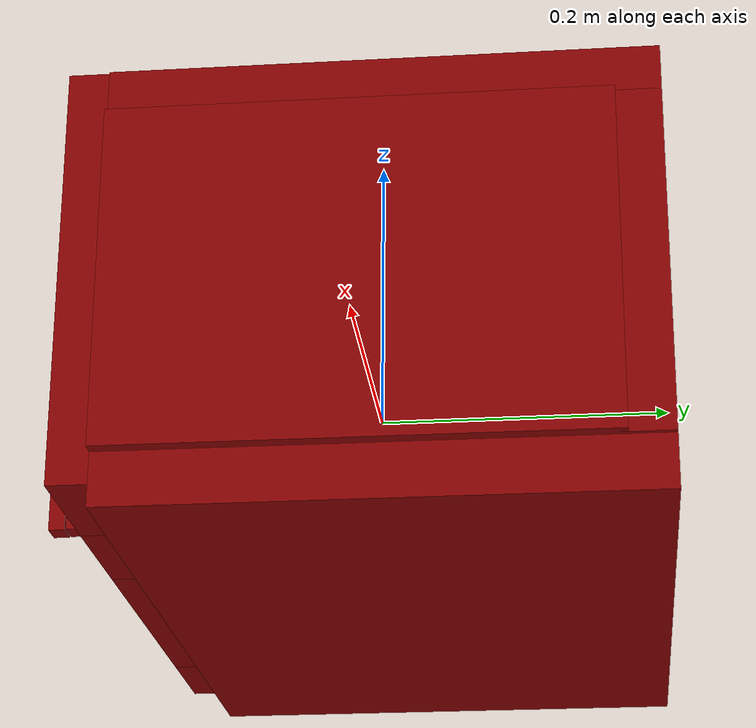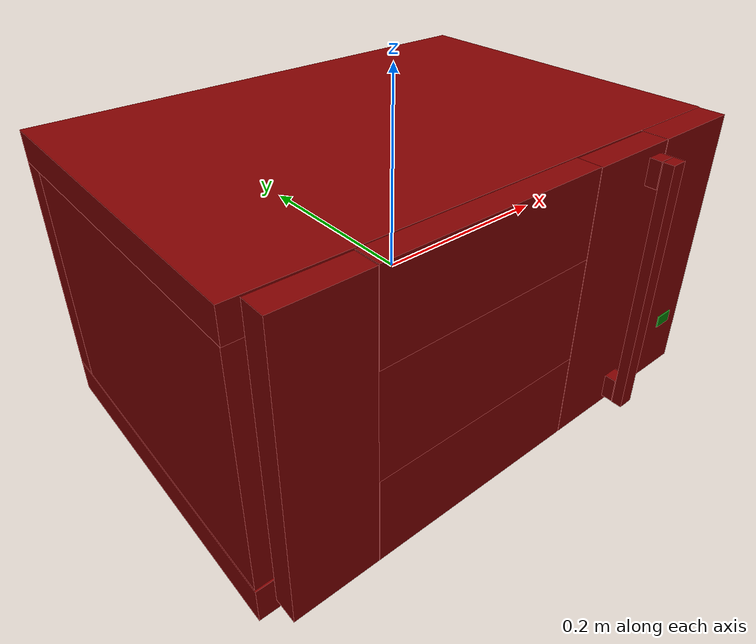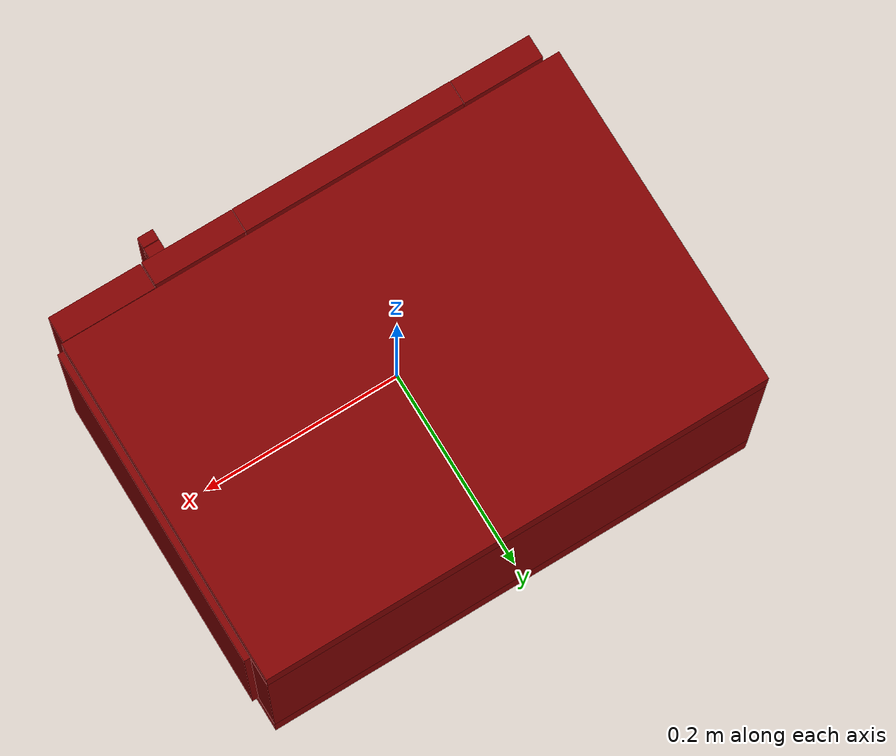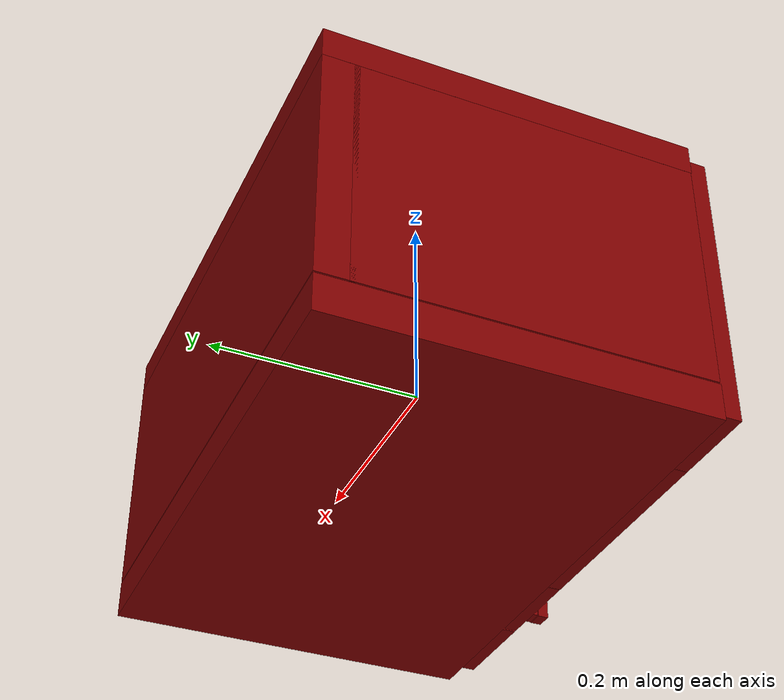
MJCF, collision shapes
<mujoco model="model">
  <compiler angle="radian"/>
  <asset>
    <mesh file="visuals/door.obj" name="door_vis"/>
    <mesh file="visuals/door_Clear.obj" name="door_Clear_vis"/>
    <mesh file="visuals/Body001.obj" name="Body001_vis"/>
    <mesh file="visuals/Disc001.obj" name="Disc001_vis"/>
    <texture file="visuals/T_BC001.png" name="Body001_material" type="2d"/>
    <material name="Body001_material" rgba="1 1 1 1.0" texture="Body001_material" shininess="0.4472135901451111" specular="0.3103448502657381"/>
    <texture file="visuals/T_BC001.png" name="door_material" type="2d"/>
    <material name="door_material" rgba="1 1 1 1.0" texture="door_material" shininess="0.4472135901451111" specular="0.3103448502657381"/>
    <material name="door_Clear_material" rgba="0.036379650235176086 0.036379650235176086 0.036379650235176086 0.800000011920929" shininess="0.4472135901451111" specular="0.3103448502657381"/>
    <texture file="visuals/T_BC001.png" name="Disc001_material" type="2d"/>
    <material name="Disc001_material" rgba="1 1 1 1.0" texture="Disc001_material" shininess="0.4472135901451111" specular="0.3103448502657381"/>
  </asset>
  <default>
    <default class="visual">
      <geom conaffinity="0" contype="0" group="1" type="mesh"/>
    </default>
    <default class="collision">
      <geom group="0" rgba="0.5 0 0 0.5"/>
    </default>
    <default class="spawn">
      <geom group="0" rgba="1 1 1 0.5" contype="0" conaffinity="0"/>
      <site group="0" rgba="1 1 1 0.5"/>
    </default>
    <default class="region">
      <geom group="1" conaffinity="0" contype="0" rgba="0 1 0 0"/>
    </default>
  </default>
  <worldbody>
    <body>
      <body name="object">
        <geom class="collision" type="box" pos="0.1790604144334793 -0.1747555434703827 -0.07034597545862198" size="0.010103335604071617 0.0005111488280817866 0.006452349480241537" quat="1.0 0.0 0.0 0.0" name="start_button" rgba="0.0 0.5 0 0.5"/>
        <geom class="collision" type="box" pos="-0.05399312078952789 0.009621268138289452 -0.09410758316516876" size="0.15310898423194885 0.15310898423194885 0.0017663863254711032" quat="1.0 0.0 0.0 0.0" name="tray" rgba="0 1 0 0.5"/>
        <geom class="collision" type="box" pos="0.22268560528755188 -0.1747555434703827 -0.07034597545862198" size="0.010103379376232624 0.0005111488280817866 0.006452389992773533" quat="1.0 0.0 0.0 0.0" name="stop_button" rgba="0.0 0.5 0 0.5"/>
        <geom mesh="Body001_vis" type="mesh" solimp="0.998 0.998 0.001" solref="0.001 1" density="100" friction="0.95 0.3 0.1" class="visual" material="Body001_material"/>
        <geom class="collision" type="box" pos="-0.0031328280456364155 0.0246217530220747 0.13018661737442017" size="0.2534918189048767 0.17240497469902039 0.01490175724029541" quat="1.0 0.0 0.0 0.0"/>
        <geom class="collision" type="box" pos="-0.0031328280456364155 0.0246217530220747 -0.12781928479671478" size="0.2534918189048767 0.17240497469902039 0.017269082367420197" quat="1.0 0.0 0.0 0.0"/>
        <geom class="collision" type="box" pos="-0.0031328280456364155 0.18049687147140503 0.0030574763659387827" size="0.2534918189048767 0.016529856249690056 0.11221601068973541" quat="1.0 0.0 0.0 0.0"/>
        <geom class="collision" type="box" pos="-0.24184638261795044 0.01073068380355835 0.0030574763659387827" size="0.014778243377804756 0.1577356904745102 0.11221601068973541" quat="1.0 0.0 0.0 0.0"/>
        <geom class="collision" type="box" pos="0.19554615020751953 0.010053715668618679 0.0030574763659387827" size="0.06107848882675171 0.15841266512870789 0.11221601068973541" quat="1.0 0.0 0.0 0.0"/>
        <geom class="collision" type="box" pos="0.20189642906188965 -0.16108404099941254 0.007467958610504866" size="0.04642556235194206 0.012811883352696896 0.13762040436267853" quat="1.0 0.0 0.0 0.0"/>
        <body name="door">
          <joint axis="0.0 0.0 1.0" pos="-0.24089153110980988 -0.16328001022338867 0.008021242916584015" limited="true" name="microjoint" range="-1.5707963267948966 0.0" type="hinge" damping="1" frictionloss="1" armature=".01" stiffness="0.05"/>
          <geom mesh="door_vis" type="mesh" solimp="0.998 0.998 0.001" solref="0.001 1" density="100" friction="0.95 0.3 0.1" class="visual" material="door_material"/>
          <geom class="collision" type="box" pos="0.10839986056089401 -0.16239327192306519 0.007827218621969223" size="0.045689020305871964 0.0118282875046134 0.13765861093997955" quat="1.0 0.0 0.0 0.0"/>
          <geom class="collision" type="box" pos="-0.20132198929786682 -0.16239327192306519 0.007827218621969223" size="0.0405549518764019 0.0118282875046134 0.13765861093997955" quat="1.0 0.0 0.0 0.0"/>
          <geom class="collision" type="box" pos="-0.048975661396980286 -0.16239327192306519 -0.08554665744304657" size="0.11122272908687592 0.0118282875046134 0.04428473487496376" quat="1.0 0.0 0.0 0.0"/>
          <geom class="collision" type="box" pos="-0.048975661396980286 -0.16239327192306519 0.10471641272306442" size="0.11122272908687592 0.0118282875046134 0.04153116047382355" quat="1.0 0.0 0.0 0.0"/>
          <geom class="collision" type="box" pos="0.1374882459640503 -0.19213654100894928 0.006687963381409645" size="0.00794241577386856 0.005189591087400913 0.1290401816368103" quat="1.0 0.0 0.0 0.0" name="door_handle"/>
          <geom class="collision" type="box" pos="0.1374882459640503 -0.18048693239688873 0.12306524068117142" size="0.00794241577386856 0.0057104541920125484 0.012662911787629128" quat="1.0 0.0 0.0 0.0"/>
          <geom class="collision" type="box" pos="0.1374882459640503 -0.18048693239688873 -0.10924994945526123" size="0.00794241577386856 0.0057104541920125484 0.012662911787629128" quat="1.0 0.0 0.0 0.0"/>
          <body name="door_Clear">
            <geom mesh="door_Clear_vis" type="mesh" solimp="0.998 0.998 0.001" solref="0.001 1" density="100" friction="0.95 0.3 0.1" class="visual" material="door_Clear_material"/>
            <geom class="collision" type="box" pos="-0.050185106694698334 -0.1702822893857956 0.0124798733741045" size="0.1538039743900299 0.003656663466244936 0.07202129811048508" quat="1.0 0.0 0.0 0.0"/>
          </body>
        </body>
        <body name="Disc001">
          <joint axis="0.0 0.0 1.0" pos="-0.05386015772819519 0.009683333337306976 -0.10267581790685654" limited="false" name="Disc001_joint" range="0 360" type="hinge" damping="1" frictionloss="1" armature=".01" stiffness="0.05"/>
          <geom mesh="Disc001_vis" type="mesh" solimp="0.998 0.998 0.001" solref="0.001 1" density="100" friction="0.95 0.3 0.1" class="visual" material="Disc001_material"/>
          <geom class="collision" type="cylinder" pos="-0.05399312078952789 0.009621268138289452 -0.10179539769887924" size="0.1531095653772354 0.003344351891428232" quat="1.0 0.0 0.0 0.0"/>
        </body>
        <geom class="region" name="reg_main" type="box" pos="0.0 0.01140257716178894 0.0" size="0.25662463903427124 0.1856241375207901 0.14508835971355438"/>
        <geom class="region" name="reg_int" type="box" pos="-0.04833848774433136 0.020682156085968018 0.00765484943985939" size="0.17574232816696167 0.16009287536144257 0.11392104998230934"/>
      </body>
    </body>
  </worldbody>
  <actuator>
    <motor name="microjoint_actuator" joint="microjoint" gear="10"/>
    <motor name="Disc001_joint_actuator" joint="Disc001_joint" gear="10"/>
  </actuator>
</mujoco>
